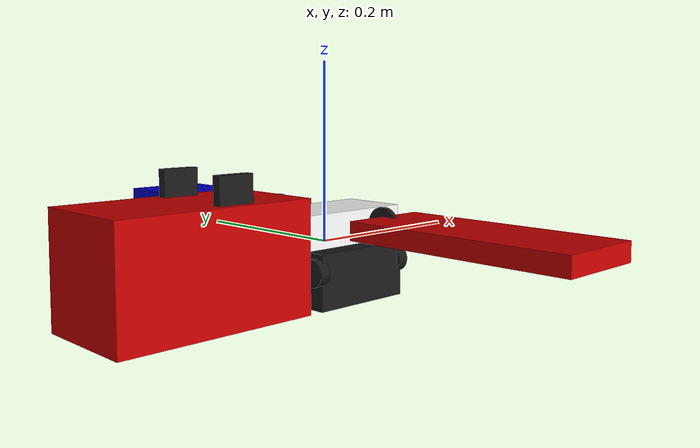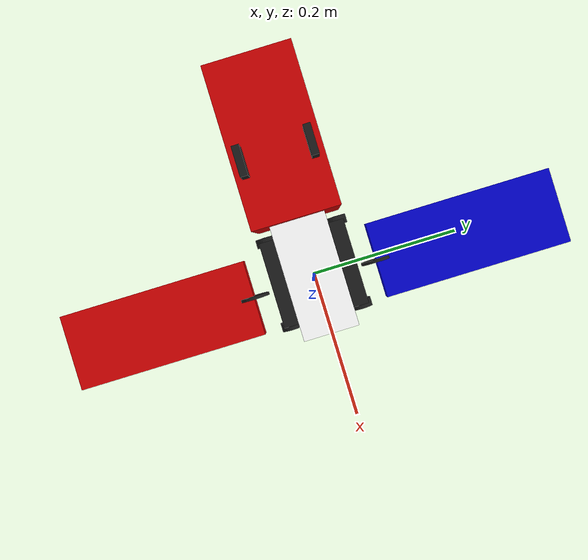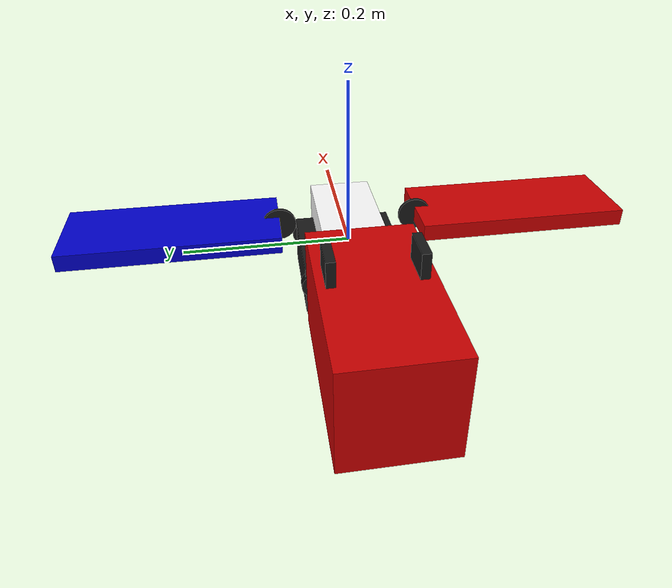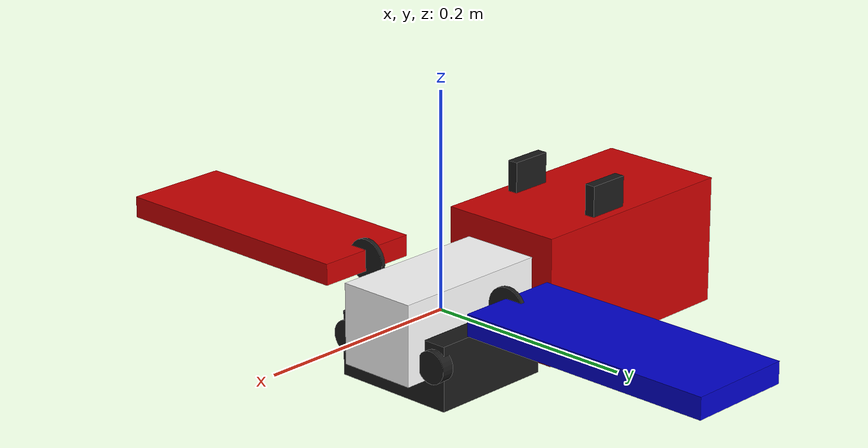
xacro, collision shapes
<?xml version="1.0"?>
<robot xmlns:xacro="http://www.ros.org/wiki/xacro" name="tri_bot">

  <!-- Inertia formulas -->
  <xacro:macro name="box_inertia" params="m w h d xyz rpy">
    <inertial>
      <origin xyz="${xyz}" rpy="${rpy}"/>
      <mass value="${m}"/>
      <inertia ixx="${(m/12) * (h*h + d*d)}" ixy="0.0" ixz="0.0"
               iyy="${(m/12) * (w*w + d*d)}" iyz="0.0"
               izz="${(m/12) * (w*w + h*h)}"/>
    </inertial>
  </xacro:macro>

  <xacro:macro name="cylinder_inertia" params="m r h xyz rpy">
    <inertial>
      <origin xyz="${xyz}" rpy="${rpy}"/>
      <mass value="${m}"/>
      <inertia ixx="${(m/12) * (3*r*r + h*h)}" ixy = "0.0" ixz = "0.0"
               iyy="${(m/12) * (3*r*r + h*h)}" iyz = "0.0"
               izz="${(m/2) * (r*r)}"/>
    </inertial>
  </xacro:macro>

  <xacro:macro name="sphere_inertia" params="m r xyz rpy">
    <inertial>
      <origin xyz="${xyz}" rpy="${rpy}"/>
      <mass value="${m}"/>
      <inertia ixx="${(2/5) * m * (r*r)}" ixy="0.0" ixz="0.0"
               iyy="${(2/5) * m * (r*r)}" iyz="0.0"
               izz="${(2/5) * m * (r*r)}"/>
    </inertial>
  </xacro:macro>

  <!-- All the values below are approximated -->
  <!-- The value indicates the length in meter -->
  <xacro:property name="body_length" value="0.16" />
  <xacro:property name="body_width" value="0.075" />
  <xacro:property name="single_wing_span" value="0.25" />
  <!-- Aileron: hinge at trailing edge; span runs along ±Y on each wing -->
  <xacro:property name="aileron_chord" value="0.04"/>
  <xacro:property name="aileron_span" value="0.08"/>
  <xacro:property name="aileron_thickness" value="0.004"/>
  <xacro:property name="aileron_hinge_y_frac" value="0.65"/>
  <xacro:property name="aileron_deflect_max" value="0.436"/>
  <xacro:property name="nose_length" value="0.08" />

  <xacro:property name="zoom_cam_size" value="0.019" />
  <xacro:property name="night_cam_size_x" value="0.02" />
  <xacro:property name="night_cam_size_y" value="0.02" />
  <xacro:property name="night_cam_size_z" value="0.02854" />
  <xacro:property name="cam_separation" value="0.04" />
  <!-- TVC mesh origin in link frame (CAD); link is fixed to rear of fuselage -->
  <xacro:property name="tvc_mesh_origin_x" value="-0.1858" />

  <material name="blue">
    <color rgba="0 0 0.8 1"/>
  </material>
  <material name="white">
    <color rgba="1 1 1 1"/>
  </material>
  <material name="red">
    <color rgba="0.8 0 0 1"/>
  </material>
  <material name="black">
    <color rgba="0.1 0.1 0.1 1"/>
  </material>

  <!-- Dummy root link (no inertia) for KDL: robot_state_publisher warns if root has inertia -->
  <link name="base_footprint"/>
  <joint name="base_footprint_joint" type="fixed">
    <parent link="base_footprint"/>
    <child link="base_link"/>
    <origin xyz="0 0 0" rpy="0 0 0"/>
  </joint>

  <link name="base_link">
    <visual>
      <origin xyz="0 0 0" rpy="0 0 0"/>
      <geometry>
        <mesh filename="package://tri_bot_description/mesh/EUN1_V7_fuselage_1.STL" scale="0.001 0.001 0.001"/>
      </geometry>
      <material name="white"/>
    </visual>
    <collision>
      <geometry>
        <box size="${body_length} ${body_width} ${body_width}"/>
      </geometry>
    </collision>
    <xacro:box_inertia m="3" w="${body_length}" h="${body_width}" d="${body_width}" xyz="0 0 0" rpy="0 0 0"/>
  </link>

  <link name="camera_night_link">
    <visual>
      <geometry>
        <box size="${night_cam_size_x} ${night_cam_size_y} ${night_cam_size_z}"/>
      </geometry>
      <material name="black"/>
    </visual>
    <xacro:box_inertia m="0.01" w="${night_cam_size_x}" h="${night_cam_size_y}" d="${night_cam_size_z}" xyz="0 0 0" rpy="0 0 0"/>
  </link>

  <joint name="camera_night_joint" type="fixed">
    <parent link="base_link"/>
    <child link="camera_night_link"/>
    <origin xyz="${nose_length*0.8} ${cam_separation/2} 0" rpy="0 0 0"/>
  </joint>

  <link name="camera_zoom_link">
    <visual>
      <geometry>
        <cylinder radius="${zoom_cam_size/2}" length="${zoom_cam_size*1.5}"/>
      </geometry>
      <origin xyz="0 0 0" rpy="0 1.57 0"/>
      <material name="black"/>
    </visual>
    <xacro:box_inertia m="0.01" w="${zoom_cam_size*1.5}" h="${zoom_cam_size}" d="${zoom_cam_size}" xyz="0 0 0" rpy="0 0 0"/>
  </link>

  <joint name="camera_zoom_joint" type="fixed">
    <parent link="base_link"/>
    <child link="camera_zoom_link"/>
    <origin xyz="${nose_length*0.8} -${cam_separation/2} 0" rpy="0 0 0"/>
  </joint>

  <!-- ROS 2 and cameras use 2 different coordinate systems -->
  <!-- The 2 optical frames uniform the standard to the one that ROS 2 uses -->
  <link name="camera_night_optical_frame"/>
  <joint name="camera_night_optical_joint" type="fixed">
    <parent link="camera_night_link"/>
    <child link="camera_night_optical_frame"/>
    <origin xyz="0 0 0" rpy="-1.57 0 -1.57"/>
  </joint>

  <link name="camera_zoom_optical_frame"/>
  <joint name="camera_zoom_optical_joint" type="fixed">
    <parent link="camera_zoom_link"/>
    <child link="camera_zoom_optical_frame"/>
    <origin xyz="0 0 0" rpy="-1.57 0 -1.57"/>
  </joint>

  <link name="left_wing">
    <visual>
      <geometry>
        <mesh filename="package://tri_bot_description/mesh/EUN1_V7_left_wing.STL" scale="0.001 0.001 0.001"/>
      </geometry>
      <origin xyz="0 0 0" rpy="0 0 0"/>
      <material name="blue"/>
    </visual>
    <collision>
      <geometry>
        <box size="0.1 ${single_wing_span} 0.02"/>
      </geometry>
      <origin xyz="0 ${single_wing_span/2} 0" rpy="0 0 0"/>
    </collision>
    <xacro:box_inertia m="0.05" w="0.1" h="${single_wing_span}" d="0.02" xyz="0 ${single_wing_span/2} 0" rpy="0 0 0"/>
  </link>

  <joint name="left_wing_fold_joint" type="revolute">
    <parent link="base_link"/>
    <child link="left_wing"/>
    <origin xyz="0.00651 0.0835 0.02567"/>
    <axis xyz="1 0 0"/>
    <limit lower="-1.57" upper="0" effort="10" velocity="1"/>
    <dynamics damping="5.0"/>
  </joint>

  <link name="left_aileron">
    <visual>
      <geometry>
        <mesh filename="package://tri_bot_description/mesh/EUN1_V7_left_aileron.STL" scale="0.001 0.001 0.001"/>
      </geometry>
      <origin xyz="0 0 0" rpy="0 0 0"/>
      <material name="black"/>
    </visual>
    <collision>
      <geometry>
        <box size="${aileron_chord} ${aileron_span} ${aileron_thickness}"/>
      </geometry>
      <origin xyz="${aileron_chord/2} 0 0" rpy="0 0 0"/>
    </collision>
    <xacro:box_inertia m="0.008" w="${aileron_chord}" h="${aileron_span}" d="${aileron_thickness}"
      xyz="${aileron_chord/2} 0 0" rpy="0 0 0"/>
  </link>

  <joint name="left_aileron_joint" type="revolute">
    <parent link="left_wing"/>
    <child link="left_aileron"/>
    <origin xyz="-0.02451 0.0765 0.00623" rpy="0 0 0"/>
    <axis xyz="0 1 0"/>
    <limit lower="-${aileron_deflect_max}" upper="${aileron_deflect_max}" effort="5" velocity="3"/>
  </joint>

  <link name="left_propeller">
    <visual>
      <geometry>
        <cylinder radius="0.02" length="0.004"/>
      </geometry>
      <origin xyz="0 0 0" rpy="0 1.57 0"/>
      <material name="black"/>
    </visual>
    <collision>
      <geometry>
        <cylinder radius="0.02" length="0.004"/>
      </geometry>
      <origin xyz="0 0 0" rpy="0 1.57 0"/>
    </collision>
    <xacro:cylinder_inertia m="0.01" r="0.02" h="0.004" xyz="0 0 0" rpy="0 1.57 0"/>
  </link>

  <joint name="left_propeller_joint" type="continuous">
    <parent link="left_wing"/>
    <child link="left_propeller"/>
    <origin xyz="" rpy="0 0 0"/>
    <axis xyz="1 0 0"/>
    <dynamics damping="0.05"/>
  </joint>

  <link name="right_wing">
    <visual>
      <geometry>
        <mesh filename="package://tri_bot_description/mesh/EUN1_V7_right_wing.STL" scale="0.001 0.001 0.001"/>
      </geometry>
      <origin xyz="0 0 0" rpy="0 0 0"/>
      <material name="red"/>
    </visual>
    <collision>
      <geometry>
        <box size="0.1 ${single_wing_span} 0.02"/>
      </geometry>
      <origin xyz="0 -${single_wing_span/2} 0" rpy="0 0 0"/>
    </collision>
    <xacro:box_inertia m="0.05" w="0.1" h="${single_wing_span}" d="0.02" xyz="0 -${single_wing_span/2} 0" rpy="0 0 0"/>
  </link>

  <joint name="right_wing_fold_joint" type="revolute">
    <parent link="base_link"/>
    <child link="right_wing"/>
    <origin xyz="0.00651 -0.0835 0.02567"/>
    <axis xyz="1 0 0"/> <limit lower="0" upper="1.57" effort="10" velocity="1"/>
    <dynamics damping="5.0"/>
  </joint>

  <link name="right_aileron">
    <visual>
      <geometry>
        <mesh filename="package://tri_bot_description/mesh/EUN1_V7_right_aileron.STL" scale="0.001 0.001 0.001"/>
      </geometry>
      <origin xyz="0 0 0" rpy="0 0 0"/>
      <material name="black"/>
    </visual>
    <collision>
      <geometry>
        <box size="${aileron_chord} ${aileron_span} ${aileron_thickness}"/>
      </geometry>
      <origin xyz="${aileron_chord/2} 0 0" rpy="0 0 0"/>
    </collision>
    <xacro:box_inertia m="0.008" w="${aileron_chord}" h="${aileron_span}" d="${aileron_thickness}"
      xyz="${aileron_chord/2} 0 0" rpy="0 0 0"/>
  </link>

  <joint name="right_aileron_joint" type="revolute">
    <parent link="right_wing"/>
    <child link="right_aileron"/>
    <origin xyz="-0.02451 -0.0765 0.00623" rpy="0 0 0"/>
    <axis xyz="0 1 0"/>
    <limit lower="-${aileron_deflect_max}" upper="${aileron_deflect_max}" effort="5" velocity="3"/>
    <dynamics damping="0.5"/>
  </joint>

  <link name="right_propeller">
    <visual>
      <geometry>
        <cylinder radius="0.02" length="0.004"/>
      </geometry>
      <origin xyz="0 0 0" rpy="0 1.57 0"/>
      <material name="black"/>
    </visual>
    <collision>
      <geometry>
        <cylinder radius="0.02" length="0.004"/>
      </geometry>
      <origin xyz="0 0 0" rpy="0 1.57 0"/>
    </collision>
    <xacro:cylinder_inertia m="0.01" r="0.02" h="0.004" xyz="0 0 0" rpy="0 1.57 0"/>
  </link>

  <joint name="right_propeller_joint" type="continuous">
    <parent link="right_wing"/>
    <child link="right_propeller"/>
    <origin xyz="" rpy="0 0 0"/>
    <axis xyz="1 0 0"/>
    <dynamics damping="0.05"/>
  </joint>

  <link name="left_rudder">
    <visual>
      <geometry>
        <mesh filename="package://tri_bot_description/mesh/EUN1_V7_left_rudder.STL" scale="0.001 0.001 0.001"/>
      </geometry>
      <origin xyz="0 0 0" rpy="0 0 0"/>
      <material name="black"/>
    </visual>
    <collision>
      <geometry>
        <box size="0.04 0.01 0.08"/>
      </geometry>
      <origin xyz="0.02 0 0" rpy="0 0 0"/>
    </collision>
    <xacro:box_inertia m="0.008" w="0.04" h="0.01" d="0.08" xyz="0.02 0 0" rpy="0 0 0"/>
  </link>

  <joint name="left_rudder_joint" type="revolute">
    <parent link="base_link"/>
    <child link="left_rudder"/>
    <origin xyz="-0.1817 0.0459 0.049" rpy="0 0 0"/>
    <axis xyz="0 0 1"/>
    <limit lower="-0.436" upper="0.436" effort="5" velocity="3"/>
    <dynamics damping="0.5"/>
  </joint>

  <link name="right_rudder">
    <visual>
      <geometry>
        <mesh filename="package://tri_bot_description/mesh/EUN1_V7_right_rudder.STL" scale="0.001 0.001 0.001"/>
      </geometry>
      <origin xyz="0 0 0" rpy="0 0 0"/>
      <material name="black"/>
    </visual>
    <collision>
      <geometry>
        <box size="0.04 0.01 0.08"/>
      </geometry>
      <origin xyz="0.02 0 0" rpy="0 0 0"/>
    </collision>
    <xacro:box_inertia m="0.008" w="0.04" h="0.01" d="0.08" xyz="0.02 0 0" rpy="0 0 0"/>
  </link>

  <joint name="right_rudder_joint" type="revolute">
    <parent link="base_link"/>
    <child link="right_rudder"/>
    <origin xyz="-0.1817 -0.0459 0.049" rpy="0 0 0"/>
    <axis xyz="0 0 1"/>
    <limit lower="-0.436" upper="0.436" effort="5" velocity="3"/>
    <dynamics damping="0.5"/>
  </joint>

  <link name="wheel_frame">
    <visual>
      <geometry>
        <mesh filename="package://tri_bot_description/mesh/EUN1_V7_wheel_frame.STL" scale="0.001 0.001 0.001"/>
      </geometry>
      <origin xyz="0 0 0" rpy="0 0 0"/>
      <material name="black"/>
    </visual>
    <collision>
      <geometry>
        <box size="0.12 0.12 0.06"/>
      </geometry>
      <origin xyz="0 0 -0.03" rpy="0 0 0"/>
    </collision>
    <xacro:box_inertia m="0.15" w="0.12" h="0.12" d="0.06" xyz="0 0 -0.03" rpy="0 0 0"/>
  </link>

  <joint name="wheel_frame_joint" type="fixed">
    <parent link="base_link"/>
    <child link="wheel_frame"/>
    <origin xyz="0 0 0" rpy="0 0 0"/>
  </joint>

  <!-- Landing gear wheels (meshes + placeholders; tune joint origins to CAD). -->
  <link name="wheel_fl">
    <visual>
      <geometry>
        <mesh filename="package://tri_bot_description/mesh/EUN1_V7_wheel_FL.STL" scale="0.001 0.001 0.001"/>
      </geometry>
      <origin xyz="0 0 0" rpy="0 0 0"/>
      <material name="black"/>
    </visual>
    <collision>
      <geometry>
        <cylinder radius="0.015" length="0.012"/>
      </geometry>
      <origin xyz="0 0 0" rpy="0 1.57 0"/>
    </collision>
    <xacro:cylinder_inertia m="0.02" r="0.015" h="0.012" xyz="0 0 0" rpy="0 1.57 0"/>
  </link>
  <joint name="wheel_fl_joint" type="continuous">
    <parent link="wheel_frame"/>
    <child link="wheel_fl"/>
    <origin xyz="0.06 0.05 -0.02" rpy="0 0 0"/>
    <axis xyz="0 1 0"/>
    <dynamics damping="0.02"/>
  </joint>

  <link name="wheel_fr">
    <visual>
      <geometry>
        <mesh filename="package://tri_bot_description/mesh/EUN1_V7_wheel_FR.STL" scale="0.001 0.001 0.001"/>
      </geometry>
      <origin xyz="0 0 0" rpy="0 0 0"/>
      <material name="black"/>
    </visual>
    <collision>
      <geometry>
        <cylinder radius="0.015" length="0.012"/>
      </geometry>
      <origin xyz="0 0 0" rpy="0 1.57 0"/>
    </collision>
    <xacro:cylinder_inertia m="0.02" r="0.015" h="0.012" xyz="0 0 0" rpy="0 1.57 0"/>
  </link>
  <joint name="wheel_fr_joint" type="continuous">
    <parent link="wheel_frame"/>
    <child link="wheel_fr"/>
    <origin xyz="0.06 -0.05 -0.02" rpy="0 0 0"/>
    <axis xyz="0 1 0"/>
    <dynamics damping="0.02"/>
  </joint>

  <link name="wheel_bl">
    <visual>
      <geometry>
        <mesh filename="package://tri_bot_description/mesh/EUN1_V7_wheel_BL.STL" scale="0.001 0.001 0.001"/>
      </geometry>
      <origin xyz="0 0 0" rpy="0 0 0"/>
      <material name="black"/>
    </visual>
    <collision>
      <geometry>
        <cylinder radius="0.015" length="0.012"/>
      </geometry>
      <origin xyz="0 0 0" rpy="0 1.57 0"/>
    </collision>
    <xacro:cylinder_inertia m="0.02" r="0.015" h="0.012" xyz="0 0 0" rpy="0 1.57 0"/>
  </link>
  <joint name="wheel_bl_joint" type="continuous">
    <parent link="wheel_frame"/>
    <child link="wheel_bl"/>
    <origin xyz="-0.06 0.05 -0.02" rpy="0 0 0"/>
    <axis xyz="0 1 0"/>
    <dynamics damping="0.02"/>
  </joint>

  <link name="wheel_br">
    <visual>
      <geometry>
        <mesh filename="package://tri_bot_description/mesh/EUN1_V7_wheel_BR.STL" scale="0.001 0.001 0.001"/>
      </geometry>
      <origin xyz="0 0 0" rpy="0 0 0"/>
      <material name="black"/>
    </visual>
    <collision>
      <geometry>
        <cylinder radius="0.015" length="0.012"/>
      </geometry>
      <origin xyz="0 0 0" rpy="0 1.57 0"/>
    </collision>
    <xacro:cylinder_inertia m="0.02" r="0.015" h="0.012" xyz="0 0 0" rpy="0 1.57 0"/>
  </link>
  <joint name="wheel_br_joint" type="continuous">
    <parent link="wheel_frame"/>
    <child link="wheel_br"/>
    <origin xyz="-0.06 -0.05 -0.02" rpy="0 0 0"/>
    <axis xyz="0 1 0"/>
    <dynamics damping="0.02"/>
  </joint>

  <!-- TVC housing (STL) fixed to aft fuselage (no actuated TVC joints). -->
  <link name="tvc_link">
    <visual>
      <geometry>
        <mesh filename="package://tri_bot_description/mesh/EUN1_V7_TVC.STL" scale="0.001 0.001 0.001"/>
      </geometry>
      <origin xyz="${tvc_mesh_origin_x} 0 0" rpy="0 0 0"/>
      <material name="red"/>
    </visual>
    <collision>
      <geometry>
        <box size="0.22 0.12 0.12"/>
      </geometry>
      <origin xyz="${tvc_mesh_origin_x} 0 0" rpy="0 0 0"/>
    </collision>
    <xacro:box_inertia m="0.08" w="0.22" h="0.12" d="0.12" xyz="${tvc_mesh_origin_x} 0 0" rpy="0 0 0"/>
  </link>

  <joint name="tvc_base_joint" type="fixed">
    <parent link="base_link"/>
    <child link="tvc_link"/>
    <origin xyz="0 0 0"/>
  </joint>

  <!-- IMU sensor on base_link (required by ArduPilotPlugin and useful for ROS 2). -->
  <link name="imu_link">
    <inertial>
      <mass value="0.01"/>
      <inertia ixx="1e-7" ixy="0" ixz="0" iyy="1e-7" iyz="0" izz="1e-7"/>
    </inertial>
  </link>
  <joint name="imu_joint" type="revolute">
    <parent link="base_link"/>
    <child link="imu_link"/>
    <origin xyz="0 0 0" rpy="0 0 0"/>
    <axis xyz="0 0 1"/>
    <limit lower="0" upper="0" effort="0" velocity="0"/>
    <dynamics damping="1.0"/>
  </joint>
  <gazebo reference="imu_link">
    <sensor name="imu_sensor" type="imu">
      <pose degrees="true">0 0 0 180 0 0</pose>
      <always_on>1</always_on>
      <update_rate>1000</update_rate>
    </sensor>
  </gazebo>

  <!-- ======= Control back-end selection =======
       use_ardupilot:=false  (default) → gz_ros2_control path
       use_ardupilot:=true              → ArduPilotPlugin path (for SITL) -->
  <xacro:arg name="use_ardupilot" default="false"/>

  <!-- ── ROS 2 control path ─────────────────────────────────────────── -->
  <xacro:unless value="$(arg use_ardupilot)">
    <xacro:arg name="controllers_file" default=""/>
    <ros2_control name="TriBotControl" type="system">
      <hardware>
        <plugin>gz_ros2_control/GazeboSimSystem</plugin>
      </hardware>
      <joint name="left_wing_fold_joint">
        <command_interface name="position"/>
        <state_interface name="position"/>
        <state_interface name="velocity"/>
      </joint>
      <joint name="right_wing_fold_joint">
        <command_interface name="position"/>
        <state_interface name="position"/>
        <state_interface name="velocity"/>
      </joint>
    </ros2_control>
    <gazebo>
      <plugin filename="gz_ros2_control-system" name="gz_ros2_control::GazeboSimROS2ControlPlugin">
        <robot_param>robot_description</robot_param>
        <robot_param_node>robot_state_publisher</robot_param_node>
        <parameters>$(arg controllers_file)</parameters>
      </plugin>
    </gazebo>
  </xacro:unless>

  <!-- ── ArduPilot SITL path ─────────────────────────────────────────── -->
  <xacro:if value="$(arg use_ardupilot)">
    <gazebo>
      <plugin name="ArduPilotPlugin" filename="ArduPilotPlugin">
        <fdm_addr>127.0.0.1</fdm_addr>
        <fdm_port_in>9002</fdm_port_in>
        <connectionTimeoutMaxCount>5</connectionTimeoutMaxCount>
        <lock_step>1</lock_step>

        <!-- tri_bot body frame: X-forward, Y-left, Z-up (ROS REP-103).
             ArduPilot NED: X-forward, Y-right, Z-down.
             Rotation from Gazebo model frame to ArduPilot body: 180 deg roll. -->
        <modelXYZToAirplaneXForwardZDown degrees="true">0 0 0 180 0 0</modelXYZToAirplaneXForwardZDown>
        <gazeboXYZToNED degrees="true">0 0 0 180 0 90</gazeboXYZToNED>

        <imuName>imu_link::imu_sensor</imuName>

        <!-- CH1 (SERVO1): left wing fold — POSITION servo -->
        <control channel="0">
          <jointName>left_wing_fold_joint</jointName>
          <useForce>1</useForce>
          <multiplier>-3.14</multiplier>
          <offset>-0.5</offset>
          <servo_min>1100</servo_min>
          <servo_max>1900</servo_max>
          <type>POSITION</type>
          <p_gain>10.0</p_gain>
          <i_gain>0</i_gain>
          <d_gain>0</d_gain>
          <i_max>0</i_max>
          <i_min>0</i_min>
          <cmd_max>0.0</cmd_max>
          <cmd_min>-1.57</cmd_min>
        </control>

        <!-- CH2 (SERVO2): right wing fold — POSITION servo -->
        <control channel="1">
          <jointName>right_wing_fold_joint</jointName>
          <useForce>1</useForce>
          <multiplier>3.14</multiplier>
          <offset>-0.5</offset>
          <servo_min>1100</servo_min>
          <servo_max>1900</servo_max>
          <type>POSITION</type>
          <p_gain>10.0</p_gain>
          <i_gain>0</i_gain>
          <d_gain>0</d_gain>
          <i_max>0</i_max>
          <i_min>0</i_min>
          <cmd_max>1.57</cmd_max>
          <cmd_min>0.0</cmd_min>
        </control>
      </plugin>
    </gazebo>

    <!-- Publish joint states so ArduPilotPlugin can read JointPosition components -->
    <gazebo>
      <plugin filename="gz-sim-joint-state-publisher-system"
        name="gz::sim::systems::JointStatePublisher">
      </plugin>
    </gazebo>

    <!-- ApplyJointForce required for each joint ArduPilot drives -->
    <gazebo>
      <plugin filename="gz-sim-apply-joint-force-system" name="gz::sim::systems::ApplyJointForce">
        <joint_name>left_wing_fold_joint</joint_name>
      </plugin>
    </gazebo>
    <gazebo>
      <plugin filename="gz-sim-apply-joint-force-system" name="gz::sim::systems::ApplyJointForce">
        <joint_name>right_wing_fold_joint</joint_name>
      </plugin>
    </gazebo>
  </xacro:if>
</robot>
